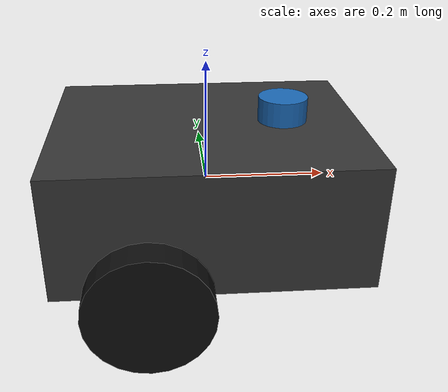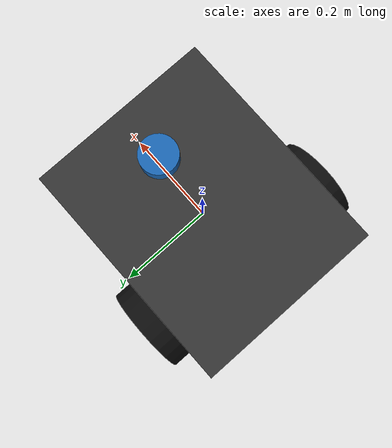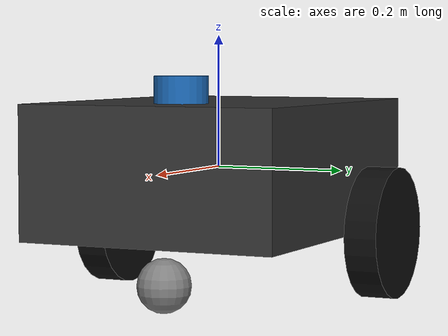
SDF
<?xml version="1.0" ?>

<sdf version="1.9">

    <model name="curious_robot">

        <!-- Der Roboter soll von der Physik beeinflusst werden -->
        <static>false</static>

        <!-- CHASSIS / HAUPTKÖRPER                    -->
        <link name="chassis">

            <!-- Masse des Chassis -->
            <inertial>
                <mass>2.0</mass>

                <inertia>
                    <ixx>0.0217</ixx>
                    <iyy>0.0417</iyy>
                    <izz>0.0617</izz>

                    <ixy>0</ixy>
                    <ixz>0</ixz>
                    <iyz>0</iyz>
                </inertia>
            </inertial>

            <!-- Physische Form -->
            <collision name="chassis_collision">
                <geometry>
                    <box>
                        <!-- Länge / Breite / Höhe -->
                        <size>0.5 0.4 0.2</size>
                    </box>
                </geometry>
            </collision>

            <!-- Sichtbare Form -->
            <visual name="chassis_visual">
                <geometry>
                    <box>
                        <size>0.5 0.4 0.2</size>
                    </box>
                </geometry>

                <material>
                    <ambient>0.15 0.15 0.15 1</ambient>
                    <diffuse>0.2 0.2 0.2 1</diffuse>
                    <specular>0.3 0.3 0.3 1</specular>
                </material>
            </visual>

            <!-- 2D-LIDAR, FEST AM CHASSIS                 -->
            <!-- Gehäuse auf der Oberseite: 0.20/2 + 0.04/2 = 0.12 m -->
            <visual name="lidar_housing">
                <pose>0.125 0 0.12 0 0 0</pose>
                <geometry>
                    <cylinder>
                        <radius>0.04</radius>
                        <length>0.04</length>
                    </cylinder>
                </geometry>
                <material>
                    <ambient>0.1 0.4 0.7 1</ambient>
                    <diffuse>0.1 0.4 0.7 1</diffuse>
                </material>
            </visual>

            <sensor name="lidar" type="gpu_lidar">
                <!-- x = 0.50/4; z = Chassisoberseite 0.10 + 0.05 m -->
                <!-- Scanebene liegt auch über dem Gehäuse (Oberkante 0.14 m) -->
                <pose>0.125 0 0.15 0 0 0</pose>
                <topic>/model/curious_robot/lidar</topic>
                <always_on>true</always_on>
                <update_rate>10</update_rate>
                <visualize>true</visualize>
                <lidar>
                    <scan>
                        <horizontal>
                            <!-- 361 Werte inklusive beider Endpunkte: 1 Grad Abstand -->
                            <samples>361</samples>
                            <resolution>1</resolution>
                            <min_angle>-3.141592653589793</min_angle>
                            <max_angle>3.141592653589793</max_angle>
                        </horizontal>
                        <vertical>
                            <samples>1</samples>
                            <resolution>1</resolution>
                            <min_angle>0</min_angle>
                            <max_angle>0</max_angle>
                        </vertical>
                    </scan>
                    <range>
                        <min>0.1</min>
                        <max>10</max>
                        <resolution>0.01</resolution>
                    </range>
                </lidar>
            </sensor>

        </link>

        <!-- LINKES RAD                               -->
        <link name="left_wheel">

            <!-- Achse einen Radradius hinter der Mitte: Schwerpunkt im Stützdreieck -->
            <!-- Radunterkante: -0.10 - 0.10 = -0.20 m -->
            <pose>-0.10 0.23 -0.10 1.5708 0 0</pose>

            <inertial>
                <mass>0.2</mass>

                <inertia>
                    <ixx>0.0005</ixx>
                    <iyy>0.0005</iyy>
                    <izz>0.0005</izz>

                    <ixy>0</ixy>
                    <ixz>0</ixz>
                    <iyz>0</iyz>
                </inertia>
            </inertial>

            <collision name="left_wheel_collision">
                <geometry>
                    <cylinder>
                        <radius>0.10</radius>
                        <length>0.05</length>
                    </cylinder>
                </geometry>
            </collision>

            <visual name="left_wheel_visual">
                <geometry>
                    <cylinder>
                        <radius>0.10</radius>
                        <length>0.05</length>
                    </cylinder>
                </geometry>

                <material>
                    <ambient>0.05 0.05 0.05 1</ambient>
                    <diffuse>0.05 0.05 0.05 1</diffuse>
                </material>
            </visual>

        </link>

        <!-- RECHTES RAD                              -->
        <link name="right_wheel">

            <pose>-0.10 -0.23 -0.10 1.5708 0 0</pose>

            <inertial>
                <mass>0.2</mass>

                <inertia>
                    <ixx>0.0005</ixx>
                    <iyy>0.0005</iyy>
                    <izz>0.0005</izz>

                    <ixy>0</ixy>
                    <ixz>0</ixz>
                    <iyz>0</iyz>
                </inertia>
            </inertial>

            <collision name="right_wheel_collision">
                <geometry>
                    <cylinder>
                        <radius>0.10</radius>
                        <length>0.05</length>
                    </cylinder>
                </geometry>
            </collision>

            <visual name="right_wheel_visual">
                <geometry>
                    <cylinder>
                        <radius>0.10</radius>
                        <length>0.05</length>
                    </cylinder>
                </geometry>

                <material>
                    <ambient>0.05 0.05 0.05 1</ambient>
                    <diffuse>0.05 0.05 0.05 1</diffuse>
                </material>
            </visual>

        </link>

        <!-- PASSIVER CASTER / STÜTZE                 -->
        <link name="caster_support">

            <!-- Kugelunterkante: -0.16 - 0.04 = -0.20 m, wie bei den Rädern -->
            <pose>0.18 0 -0.16 0 0 0</pose>

            <inertial>
                <mass>0.05</mass>

                <inertia>
                    <ixx>0.00002</ixx>
                    <iyy>0.00002</iyy>
                    <izz>0.00002</izz>

                    <ixy>0</ixy>
                    <ixz>0</ixz>
                    <iyz>0</iyz>
                </inertia>
            </inertial>

            <collision name="caster_collision">
                <geometry>
                    <sphere>
                        <radius>0.04</radius>
                    </sphere>
                </geometry>
            </collision>

            <visual name="caster_visual">
                <geometry>
                    <sphere>
                        <radius>0.04</radius>
                    </sphere>
                </geometry>

                <material>
                    <ambient>0.4 0.4 0.4 1</ambient>
                    <diffuse>0.5 0.5 0.5 1</diffuse>
                </material>
            </visual>

        </link>

        <joint name="caster_joint" type="ball">
            <parent>chassis</parent>
            <child>caster_support</child>
            <pose>0 0 0 0 0 0</pose>
        </joint>

        <!-- GELENK: CHASSIS -> LINKES RAD            -->
        <joint name="left_wheel_joint" type="revolute">

            <parent>chassis</parent>
            <child>left_wheel</child>

            <axis>
                <!-- Modell-Y ist die Radachse; der Rad-/Gelenkrahmen ist gedreht -->
                <xyz expressed_in="__model__">0 1 0</xyz>

                <limit>
                    <lower>-1e16</lower>
                    <upper>1e16</upper>
                </limit>
            </axis>

        </joint>

        <!-- GELENK: CHASSIS -> RECHTES RAD           -->
        <joint name="right_wheel_joint" type="revolute">

            <parent>chassis</parent>
            <child>right_wheel</child>

            <axis>
                <!-- Modell-Y ist die Radachse; der Rad-/Gelenkrahmen ist gedreht -->
                <xyz expressed_in="__model__">0 1 0</xyz>

                <limit>
                    <lower>-1e16</lower>
                    <upper>1e16</upper>
                </limit>
            </axis>

        </joint>

        <!-- DIFFERENTIALANTRIEB                      -->
        <plugin filename="gz-sim-diff-drive-system"
                name="gz::sim::systems::DiffDrive">
            <left_joint>left_wheel_joint</left_joint>
            <right_joint>right_wheel_joint</right_joint>

            <!-- Abstand der Radmitten: 0.23 - (-0.23) = 0.46 m -->
            <wheel_separation>0.46</wheel_separation>
            <wheel_radius>0.10</wheel_radius>

            <!-- gz.msgs.Twist: linear.x in m/s, angular.z in rad/s -->
            <topic>/model/curious_robot/cmd_vel</topic>
        </plugin>

    </model>

</sdf>
